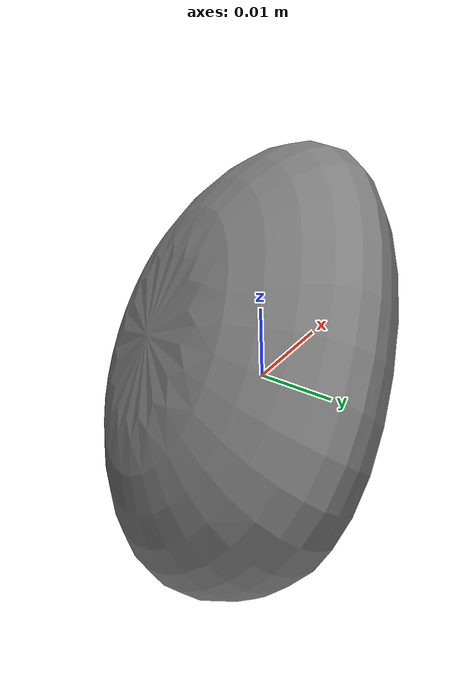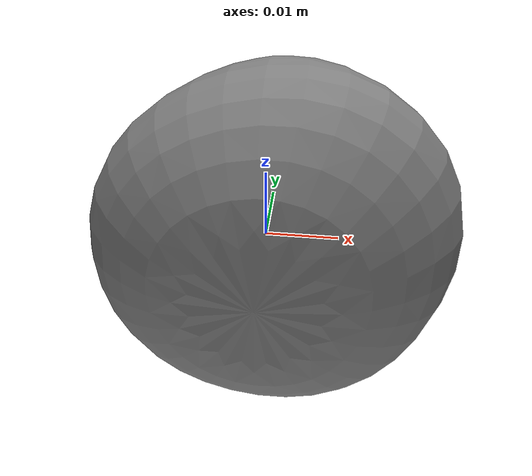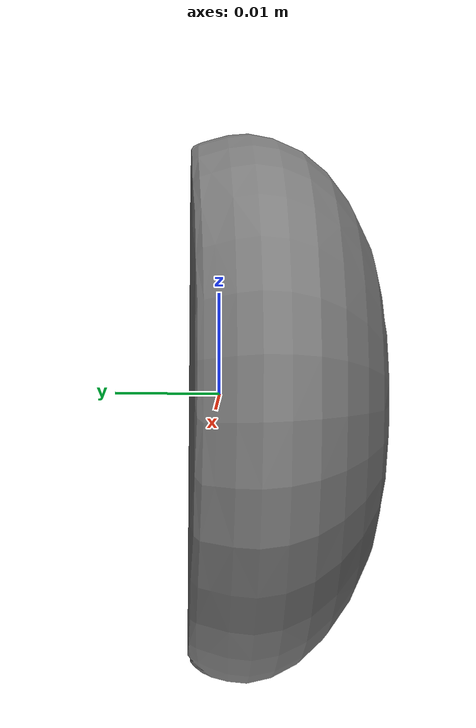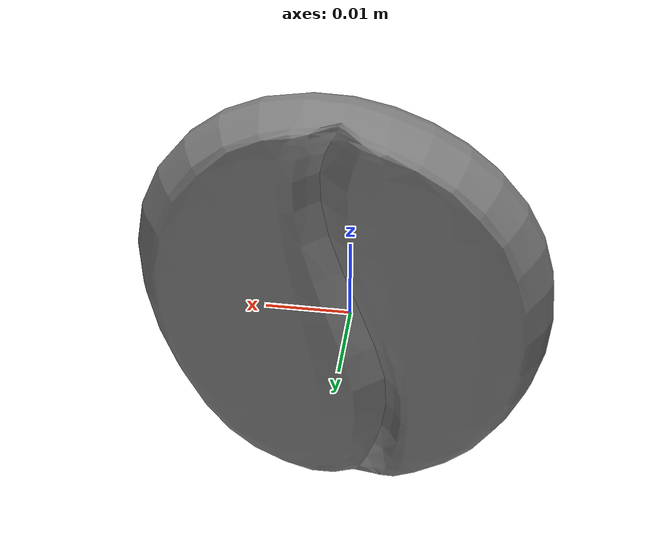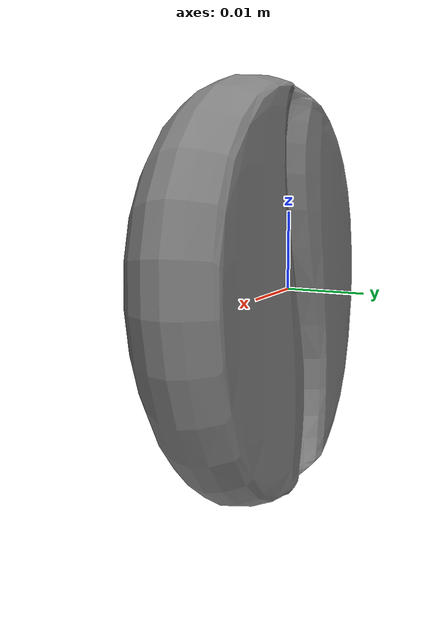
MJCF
<mujoco model="coffee_bean">
  <compiler angle="radian" meshdir="assets" autolimits="true"/>

  <asset>
    <mesh name="bean_visual" file="coffee_bean.obj" scale="20 20 20"/>
  </asset>

  <worldbody>
    <body name="bean" pos="0 0 0">
      <freejoint/>
      <geom type="mesh" mesh="bean_visual" contype="0" conaffinity="0" group="1"/>
      <geom type="sphere" size="0.02" pos="0 0 0" contype="1" conaffinity="1" rgba="0 0 0 0" friction="0.6 0.02 0.002"/>
    </body>
  </worldbody>
</mujoco>
